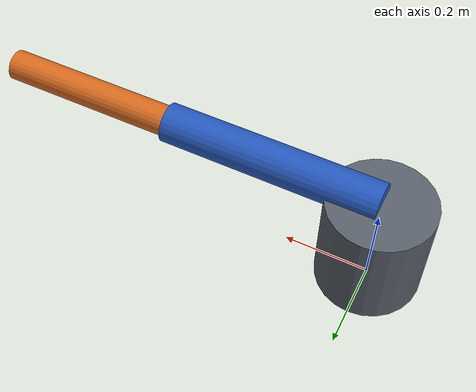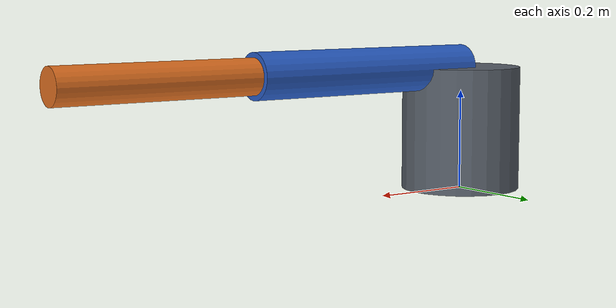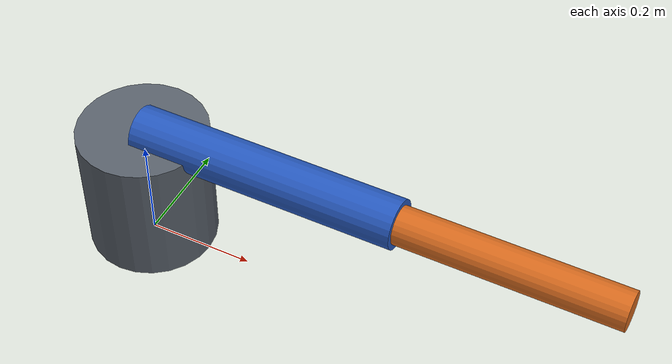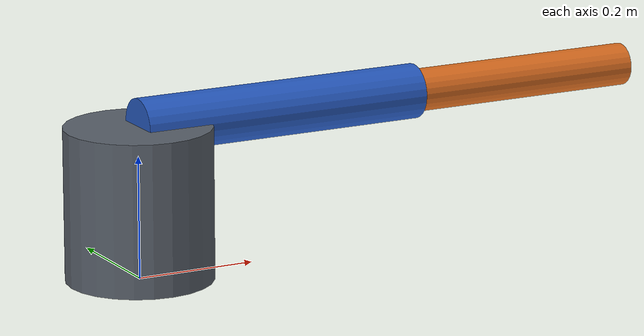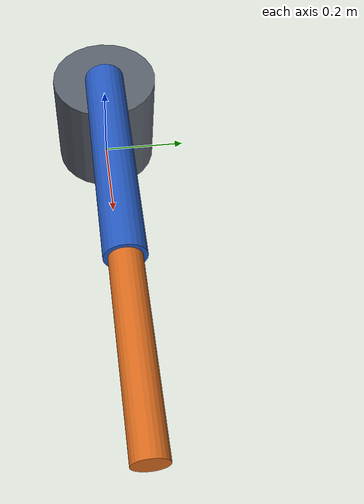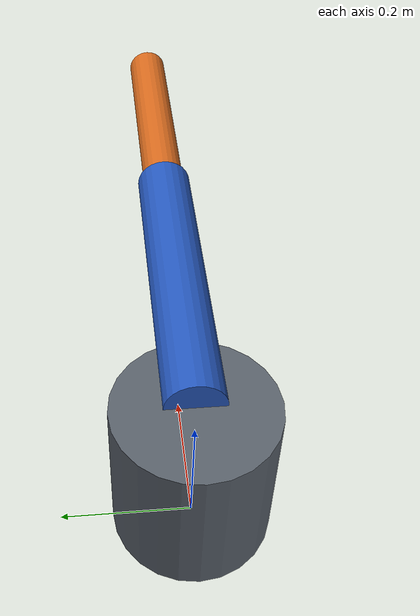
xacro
<?xml version="1.0"?>
<robot xmlns:xacro="http://www.ros.org/wiki/xacro" name="stoneware_arm">
  <xacro:arg
    name="controllers_file"
    default="$(find stoneware_description)/config/controllers.yaml"/>
  <xacro:property name="base_radius" value="0.12"/>
  <xacro:property name="base_height" value="0.25"/>
  <xacro:property name="upper_arm_length" value="0.50"/>
  <xacro:property name="upper_arm_radius" value="0.045"/>
  <xacro:property name="forearm_length" value="0.40"/>
  <xacro:property name="forearm_radius" value="0.035"/>

  <material name="base_gray">
    <color rgba="0.35 0.38 0.42 1"/>
  </material>
  <material name="upper_arm_blue">
    <color rgba="0.15 0.35 0.75 1"/>
  </material>
  <material name="forearm_orange">
    <color rgba="0.85 0.42 0.12 1"/>
  </material>

  <link name="world"/>

  <link name="base_link">
    <inertial>
      <origin xyz="0 0 ${base_height / 2}" rpy="0 0 0"/>
      <mass value="5.0"/>
      <inertia
        ixx="${5.0 * (3 * base_radius ** 2 + base_height ** 2) / 12}"
        ixy="0"
        ixz="0"
        iyy="${5.0 * (3 * base_radius ** 2 + base_height ** 2) / 12}"
        iyz="0"
        izz="${5.0 * base_radius ** 2 / 2}"/>
    </inertial>
    <visual>
      <origin xyz="0 0 ${base_height / 2}" rpy="0 0 0"/>
      <geometry>
        <cylinder radius="${base_radius}" length="${base_height}"/>
      </geometry>
      <material name="base_gray"/>
    </visual>
    <collision>
      <origin xyz="0 0 ${base_height / 2}" rpy="0 0 0"/>
      <geometry>
        <cylinder radius="${base_radius}" length="${base_height}"/>
      </geometry>
    </collision>
  </link>

  <link name="upper_arm_link">
    <inertial>
      <origin xyz="${upper_arm_length / 2} 0 0" rpy="0 0 0"/>
      <mass value="2.0"/>
      <inertia
        ixx="${2.0 * upper_arm_radius ** 2 / 2}"
        ixy="0"
        ixz="0"
        iyy="${2.0 * (3 * upper_arm_radius ** 2 + upper_arm_length ** 2) / 12}"
        iyz="0"
        izz="${2.0 * (3 * upper_arm_radius ** 2 + upper_arm_length ** 2) / 12}"/>
    </inertial>
    <visual>
      <origin xyz="${upper_arm_length / 2} 0 0" rpy="0 ${pi / 2} 0"/>
      <geometry>
        <cylinder radius="${upper_arm_radius}" length="${upper_arm_length}"/>
      </geometry>
      <material name="upper_arm_blue"/>
    </visual>
    <collision>
      <origin xyz="${upper_arm_length / 2} 0 0" rpy="0 ${pi / 2} 0"/>
      <geometry>
        <cylinder radius="${upper_arm_radius}" length="${upper_arm_length}"/>
      </geometry>
    </collision>
  </link>

  <link name="forearm_link">
    <inertial>
      <origin xyz="${forearm_length / 2} 0 0" rpy="0 0 0"/>
      <mass value="1.2"/>
      <inertia
        ixx="${1.2 * forearm_radius ** 2 / 2}"
        ixy="0"
        ixz="0"
        iyy="${1.2 * (3 * forearm_radius ** 2 + forearm_length ** 2) / 12}"
        iyz="0"
        izz="${1.2 * (3 * forearm_radius ** 2 + forearm_length ** 2) / 12}"/>
    </inertial>
    <visual>
      <origin xyz="${forearm_length / 2} 0 0" rpy="0 ${pi / 2} 0"/>
      <geometry>
        <cylinder radius="${forearm_radius}" length="${forearm_length}"/>
      </geometry>
      <material name="forearm_orange"/>
    </visual>
    <collision>
      <origin xyz="${forearm_length / 2} 0 0" rpy="0 ${pi / 2} 0"/>
      <geometry>
        <cylinder radius="${forearm_radius}" length="${forearm_length}"/>
      </geometry>
    </collision>
  </link>

  <joint name="world_fixed_joint" type="fixed">
    <parent link="world"/>
    <child link="base_link"/>
    <origin xyz="0 0 0" rpy="0 0 0"/>
  </joint>

  <joint name="shoulder_joint" type="revolute">
    <parent link="base_link"/>
    <child link="upper_arm_link"/>
    <origin xyz="0 0 ${base_height}" rpy="0 0 0"/>
    <axis xyz="0 1 0"/>
    <limit lower="-1.57" upper="1.57" effort="50" velocity="1.5"/>
  </joint>

  <joint name="elbow_joint" type="revolute">
    <parent link="upper_arm_link"/>
    <child link="forearm_link"/>
    <origin xyz="${upper_arm_length} 0 0" rpy="0 0 0"/>
    <axis xyz="0 1 0"/>
    <limit lower="-2.35" upper="2.35" effort="30" velocity="2.0"/>
  </joint>

  <ros2_control name="GazeboSimSystem" type="system">
    <hardware>
      <plugin>gz_ros2_control/GazeboSimSystem</plugin>
    </hardware>
    <joint name="shoulder_joint">
      <command_interface name="position"/>
      <state_interface name="position"/>
      <state_interface name="velocity"/>
    </joint>
    <joint name="elbow_joint">
      <command_interface name="position"/>
      <state_interface name="position"/>
      <state_interface name="velocity"/>
    </joint>
  </ros2_control>

  <gazebo>
    <plugin
      filename="libgz_ros2_control-system.so"
      name="gz_ros2_control::GazeboSimROS2ControlPlugin">
      <parameters>$(arg controllers_file)</parameters>
    </plugin>
  </gazebo>
</robot>
